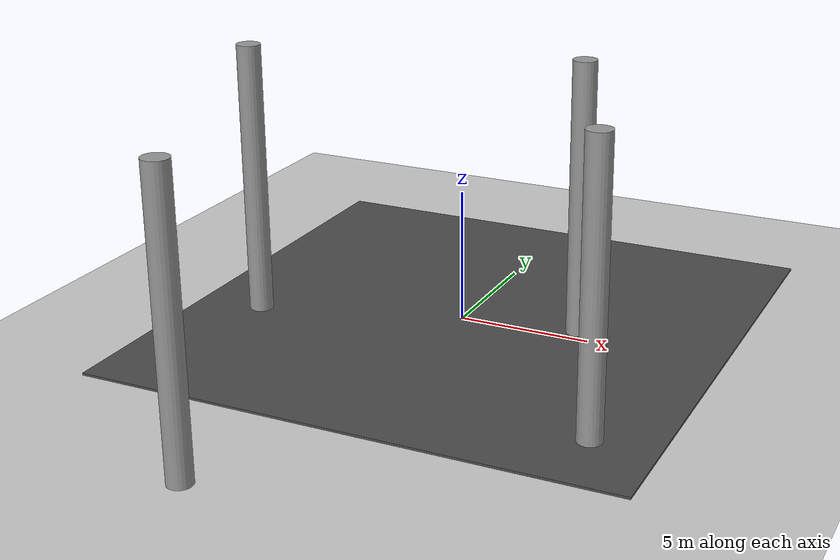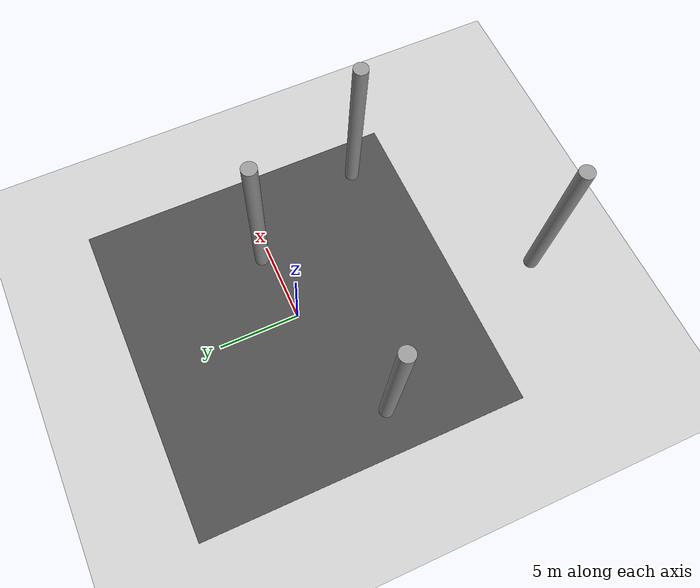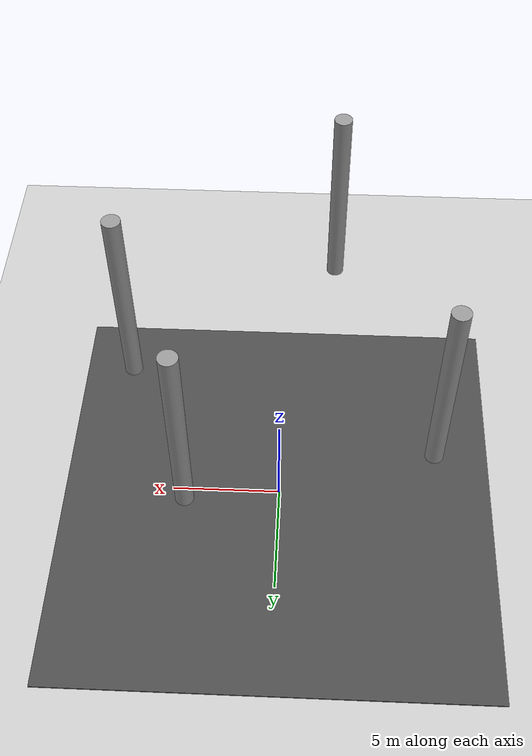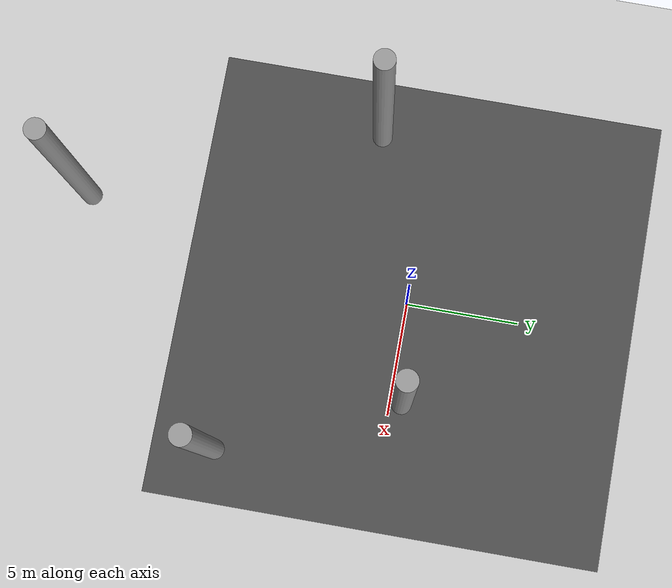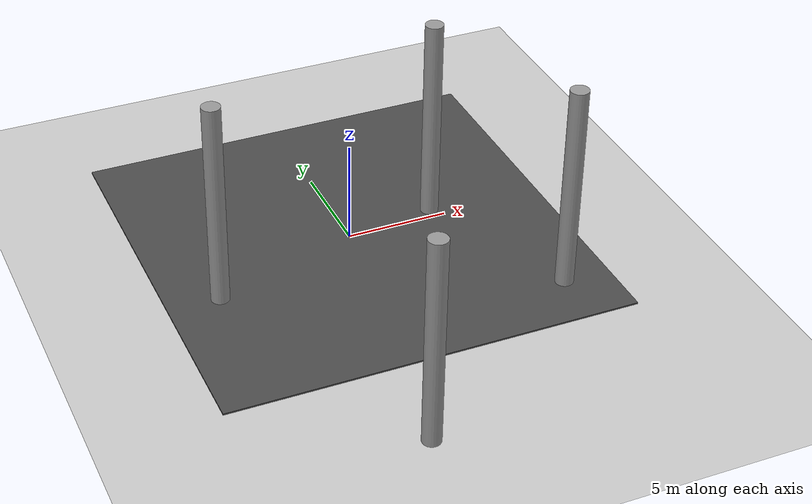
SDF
<sdf version="1.7">
 <world name="default">
  <light name="sun" type="directional">
   <pose>0 0 10 0 -0 0</pose>
   <diffuse>0.8 0.8 0.8 1</diffuse>
   <specular>0.2 0.2 0.2 1</specular>
   <attenuation>
    <range>1000</range>
    <constant>0.9</constant>
    <linear>0.01</linear>
    <quadratic>0.001</quadratic>
   </attenuation>
   <direction>-0.5 0.1 -0.9</direction>
   <spot><inner_angle>0</inner_angle><outer_angle>0</outer_angle><falloff>0</falloff></spot>
  </light>
  <model name="ground_plane">
   <static>1</static>
   <link name="link">
    <collision name="collision">
     <geometry><plane><normal>0 0 1</normal><size>100 100</size></plane></geometry>
     <surface>
      <contact><collide_bitmask>65535</collide_bitmask></contact>
      <friction><ode><mu>100</mu><mu2>50</mu2></ode></friction>
     </surface>
    </collision>
    <visual name="visual">
     <cast_shadows>0</cast_shadows>
     <geometry><plane><normal>0 0 1</normal><size>100 100</size></plane></geometry>
     <material>
      <script><uri>file://media/materials/scripts/gazebo.material</uri><name>Gazebo/Grey</name></script>
     </material>
    </visual>
   </link>
  </model>
  <gravity>0 0 -9.8</gravity>
  <magnetic_field>6e-06 2.3e-05 -4.2e-05</magnetic_field>
  <atmosphere type="adiabatic"/>
  <physics type="ode">
   <max_step_size>0.001</max_step_size>
   <real_time_factor>1</real_time_factor>
   <real_time_update_rate>1000</real_time_update_rate>
  </physics>
  <scene><ambient>0.4 0.4 0.4 1</ambient><background>0.7 0.7 0.7 1</background><shadows>1</shadows></scene>
  <spherical_coordinates>
   <surface_model>EARTH_WGS84</surface_model>
   <latitude_deg>0</latitude_deg>
   <longitude_deg>0</longitude_deg>
   <elevation>0</elevation>
   <heading_deg>0</heading_deg>
  </spherical_coordinates>
  <model name="asphalt_plane">
   <static>1</static>
   <link name="link">
    <collision name="collision"><geometry><box><size>20 20 0.1</size></box></geometry></collision>
    <visual name="visual">
     <cast_shadows>0</cast_shadows>
     <geometry><box><size>20 20 0.1</size></box></geometry>
     <material>
      <script>
       <uri>model://asphalt_plane/materials/scripts</uri>
       <uri>model://asphalt_plane/materials/textures</uri>
       <name>vrc/asphalt</name>
      </script>
     </material>
    </visual>
   </link>
   <pose>0.088585 0.057371 0 0 -0 0</pose>
  </model>
  <model name="unit_cylinder">
   <pose>7.76139 -7.17939 5.17529 -3e-06 8e-06 -0.005681</pose>
   <link name="link">
    <inertial>
     <mass>1</mass>
     <inertia><ixx>0.145833</ixx><ixy>0</ixy><ixz>0</ixz><iyy>0.145833</iyy><iyz>0</iyz><izz>0.125</izz></inertia>
    </inertial>
    <collision name="collision">
     <geometry><cylinder><radius>0.44272</radius><length>10.2506</length></cylinder></geometry>
    </collision>
    <visual name="visual">
     <geometry><cylinder><radius>0.44272</radius><length>10.2506</length></cylinder></geometry>
     <material>
      <script><name>Gazebo/Grey</name><uri>file://media/materials/scripts/gazebo.material</uri></script>
     </material>
    </visual>
   </link>
  </model>
  <model name="unit_cylinder_clone">
   <pose>-7.37469 -2.35853 5.1753 -5e-06 1.4e-05 -0.004978</pose>
   <link name="link">
    <inertial>
     <mass>1</mass>
     <inertia><ixx>0.145833</ixx><ixy>0</ixy><ixz>0</ixz><iyy>0.145833</iyy><iyz>0</iyz><izz>0.125</izz></inertia>
    </inertial>
    <collision name="collision">
     <geometry><cylinder><radius>0.44272</radius><length>10.2506</length></cylinder></geometry>
    </collision>
    <visual name="visual">
     <geometry><cylinder><radius>0.44272</radius><length>10.2506</length></cylinder></geometry>
     <material>
      <script><name>Gazebo/Grey</name><uri>file://media/materials/scripts/gazebo.material</uri></script>
     </material>
    </visual>
   </link>
  </model>
  <model name="unit_cylinder_clone_0">
   <pose>4.42704 0.526753 5.1753 -2e-06 9e-06 -0.005804</pose>
   <link name="link">
    <inertial>
     <mass>1</mass>
     <inertia><ixx>0.145833</ixx><ixy>0</ixy><ixz>0</ixz><iyy>0.145833</iyy><iyz>0</iyz><izz>0.125</izz></inertia>
    </inertial>
    <collision name="collision">
     <geometry><cylinder><radius>0.44272</radius><length>10.2506</length></cylinder></geometry>
    </collision>
    <visual name="visual">
     <geometry><cylinder><radius>0.44272</radius><length>10.2506</length></cylinder></geometry>
     <material>
      <script><name>Gazebo/Grey</name><uri>file://media/materials/scripts/gazebo.material</uri></script>
     </material>
    </visual>
   </link>
  </model>
  <model name="unit_cylinder_clone_1">
   <pose>-2.47454 -14.7633 5.12529 0 -0 -0.007194</pose>
   <link name="link">
    <inertial>
     <mass>1</mass>
     <inertia><ixx>0.145833</ixx><ixy>0</ixy><ixz>0</ixz><iyy>0.145833</iyy><iyz>0</iyz><izz>0.125</izz></inertia>
    </inertial>
    <collision name="collision">
     <geometry><cylinder><radius>0.44272</radius><length>10.2506</length></cylinder></geometry>
    </collision>
    <visual name="visual">
     <geometry><cylinder><radius>0.44272</radius><length>10.2506</length></cylinder></geometry>
     <material>
      <script><name>Gazebo/Grey</name><uri>file://media/materials/scripts/gazebo.material</uri></script>
     </material>
    </visual>
   </link>
  </model>
 </world>
</sdf>
